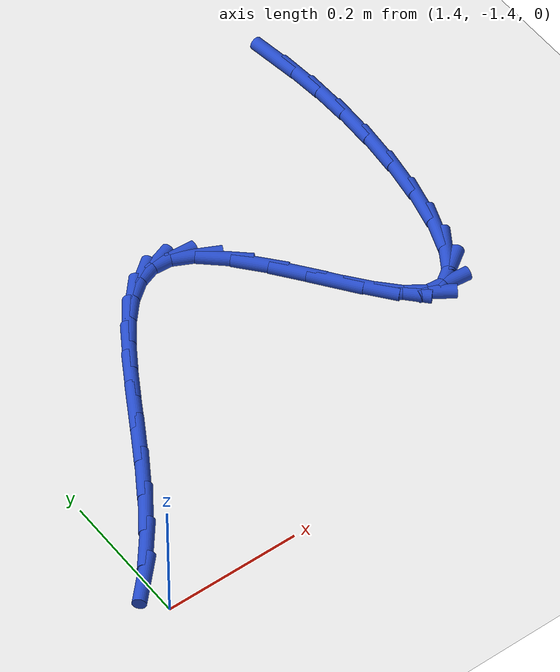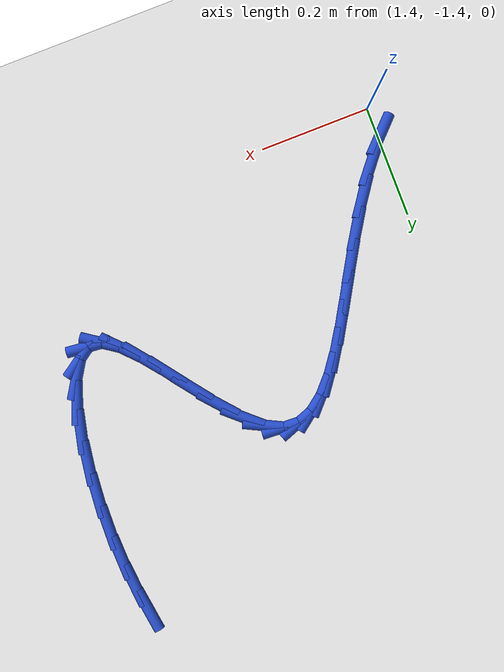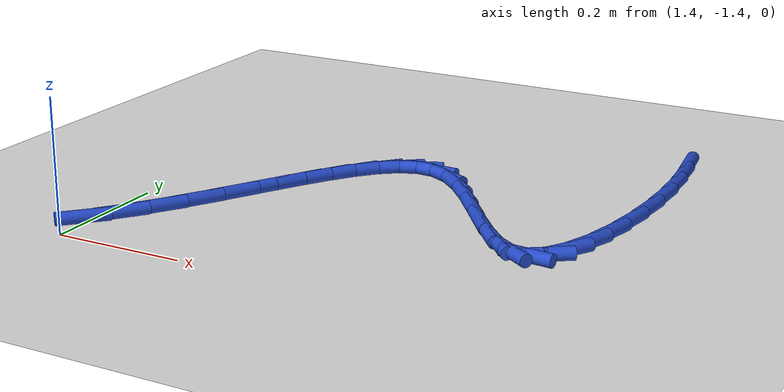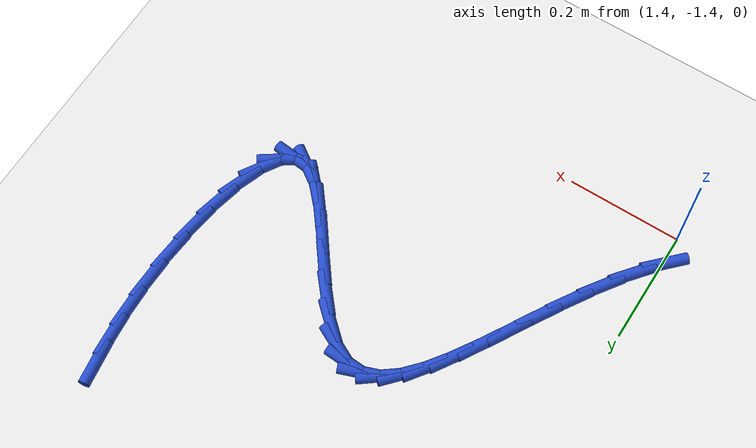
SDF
<sdf version="1.6">
 <world name="default">
  <model name="ground_plane">
   <static>1</static>
   <link name="link">
    <collision name="collision">
     <geometry><plane><normal>0 0 1</normal><size>100 100</size></plane></geometry>
     <surface><friction><ode><mu>100</mu><mu2>50</mu2></ode></friction></surface>
    </collision>
    <visual name="visual">
     <cast_shadows>0</cast_shadows>
     <geometry><plane><normal>0 0 1</normal><size>100 100</size></plane></geometry>
     <material>
      <script><uri>file://media/materials/scripts/gazebo.material</uri><name>Gazebo/WhiteGlow</name></script>
     </material>
    </visual>
   </link>
  </model>
  <model name="line">
   <link name="link_109">
    <pose>2.0806969809097278 -0.7121077961709674 0.01 0 1.57 -1.4297422819808794</pose>
    <collision name="collision">
     <geometry><cylinder><radius>0.01</radius><length>0.08</length></cylinder></geometry>
    </collision>
    <visual name="visual">
     <material>
      <script><name>Gazebo/Blue</name><uri>file://media/materials/scripts/gazebo.material</uri></script>
     </material>
     <geometry><cylinder><radius>0.01</radius><length>0.08</length></cylinder></geometry>
    </visual>
   </link>
   <link name="link_110">
    <pose>2.087818049885602 -0.7622572173757955 0.01 0 1.57 -1.483058819870906</pose>
    <collision name="collision">
     <geometry><cylinder><radius>0.01</radius><length>0.08</length></cylinder></geometry>
    </collision>
    <visual name="visual">
     <material>
      <script><name>Gazebo/Blue</name><uri>file://media/materials/scripts/gazebo.material</uri></script>
     </material>
     <geometry><cylinder><radius>0.01</radius><length>0.08</length></cylinder></geometry>
    </visual>
   </link>
   <link name="link_111">
    <pose>2.092530620627027 -0.8158314804649389 0.01 0 1.57 -1.5424538882655872</pose>
    <collision name="collision">
     <geometry><cylinder><radius>0.01</radius><length>0.08</length></cylinder></geometry>
    </collision>
    <visual name="visual">
     <material>
      <script><name>Gazebo/Blue</name><uri>file://media/materials/scripts/gazebo.material</uri></script>
     </material>
     <geometry><cylinder><radius>0.01</radius><length>0.08</length></cylinder></geometry>
    </visual>
   </link>
   <link name="link_112">
    <pose>2.094155187163833 -0.8731353539622159 0.01 0 1.57 1.5412333626647658</pose>
    <collision name="collision">
     <geometry><cylinder><radius>0.01</radius><length>0.08</length></cylinder></geometry>
    </collision>
    <visual name="visual">
     <material>
      <script><name>Gazebo/Blue</name><uri>file://media/materials/scripts/gazebo.material</uri></script>
     </material>
     <geometry><cylinder><radius>0.01</radius><length>0.08</length></cylinder></geometry>
    </visual>
   </link>
   <link name="link_113">
    <pose>2.0923902992349546 -0.9328172498233998 0.01 0 1.57 1.484482176233124</pose>
    <collision name="collision">
     <geometry><cylinder><radius>0.01</radius><length>0.08</length></cylinder></geometry>
    </collision>
    <visual name="visual">
     <material>
      <script><name>Gazebo/Blue</name><uri>file://media/materials/scripts/gazebo.material</uri></script>
     </material>
     <geometry><cylinder><radius>0.01</radius><length>0.08</length></cylinder></geometry>
    </visual>
   </link>
   <link name="link_114">
    <pose>2.0872610564807013 -0.9920948832553136 0.01 0 1.57 1.4210138317875791</pose>
    <collision name="collision">
     <geometry><cylinder><radius>0.01</radius><length>0.08</length></cylinder></geometry>
    </collision>
    <visual name="visual">
     <material>
      <script><name>Gazebo/Blue</name><uri>file://media/materials/scripts/gazebo.material</uri></script>
     </material>
     <geometry><cylinder><radius>0.01</radius><length>0.08</length></cylinder></geometry>
    </visual>
   </link>
   <link name="link_115">
    <pose>2.0788032952677566 -1.048138929182585 0.01 0 1.57 1.3398918988472788</pose>
    <collision name="collision">
     <geometry><cylinder><radius>0.01</radius><length>0.08</length></cylinder></geometry>
    </collision>
    <visual name="visual">
     <material>
      <script><name>Gazebo/Blue</name><uri>file://media/materials/scripts/gazebo.material</uri></script>
     </material>
     <geometry><cylinder><radius>0.01</radius><length>0.08</length></cylinder></geometry>
    </visual>
   </link>
   <link name="link_116">
    <pose>2.0670528519628015 -1.0981200625298417 0.01 0 1.57 1.2206101158611837</pose>
    <collision name="collision">
     <geometry><cylinder><radius>0.01</radius><length>0.08</length></cylinder></geometry>
    </collision>
    <visual name="visual">
     <material>
      <script><name>Gazebo/Blue</name><uri>file://media/materials/scripts/gazebo.material</uri></script>
     </material>
     <geometry><cylinder><radius>0.01</radius><length>0.08</length></cylinder></geometry>
    </visual>
   </link>
   <link name="link_117">
    <pose>2.0520455629325167 -1.1392089582217118 0.01 0 1.57 1.0152952510836672</pose>
    <collision name="collision">
     <geometry><cylinder><radius>0.01</radius><length>0.08</length></cylinder></geometry>
    </collision>
    <visual name="visual">
     <material>
      <script><name>Gazebo/Blue</name><uri>file://media/materials/scripts/gazebo.material</uri></script>
     </material>
     <geometry><cylinder><radius>0.01</radius><length>0.08</length></cylinder></geometry>
    </visual>
   </link>
   <link name="link_118">
    <pose>2.033817264543584 -1.1685762911828212 0.01 0 1.57 0.605283674114749</pose>
    <collision name="collision">
     <geometry><cylinder><radius>0.01</radius><length>0.08</length></cylinder></geometry>
    </collision>
    <visual name="visual">
     <material>
      <script><name>Gazebo/Blue</name><uri>file://media/materials/scripts/gazebo.material</uri></script>
     </material>
     <geometry><cylinder><radius>0.01</radius><length>0.08</length></cylinder></geometry>
    </visual>
   </link>
   <link name="link_119">
    <pose>2.0124037931626835 -1.1833927363377996 0.01 0 1.57 -0.09788023410320781</pose>
    <collision name="collision">
     <geometry><cylinder><radius>0.01</radius><length>0.08</length></cylinder></geometry>
    </collision>
    <visual name="visual">
     <material>
      <script><name>Gazebo/Blue</name><uri>file://media/materials/scripts/gazebo.material</uri></script>
     </material>
     <geometry><cylinder><radius>0.01</radius><length>0.08</length></cylinder></geometry>
    </visual>
   </link>
   <link name="link_120">
    <pose>1.9878535218407576 -1.1809820465417344 0.01 0 1.57 -0.6038722315549347</pose>
    <collision name="collision">
     <geometry><cylinder><radius>0.01</radius><length>0.08</length></cylinder></geometry>
    </collision>
    <visual name="visual">
     <material>
      <script><name>Gazebo/Blue</name><uri>file://media/materials/scripts/gazebo.material</uri></script>
     </material>
     <geometry><cylinder><radius>0.01</radius><length>0.08</length></cylinder></geometry>
    </visual>
   </link>
   <link name="link_121">
    <pose>1.9604967445570114 -1.1621103419742094 0.01 0 1.57 -0.8119499895668877</pose>
    <collision name="collision">
     <geometry><cylinder><radius>0.01</radius><length>0.08</length></cylinder></geometry>
    </collision>
    <visual name="visual">
     <material>
      <script><name>Gazebo/Blue</name><uri>file://media/materials/scripts/gazebo.material</uri></script>
     </material>
     <geometry><cylinder><radius>0.01</radius><length>0.08</length></cylinder></geometry>
    </visual>
   </link>
   <link name="link_122">
    <pose>1.9309421534945799 -1.1309430962657774 0.01 0 1.57 -0.899027513863273</pose>
    <collision name="collision">
     <geometry><cylinder><radius>0.01</radius><length>0.08</length></cylinder></geometry>
    </collision>
    <visual name="visual">
     <material>
      <script><name>Gazebo/Blue</name><uri>file://media/materials/scripts/gazebo.material</uri></script>
     </material>
     <geometry><cylinder><radius>0.01</radius><length>0.08</length></cylinder></geometry>
    </visual>
   </link>
   <link name="link_123">
    <pose>1.8998102729410689 -1.0917902577763523 0.01 0 1.57 -0.9277842895213513</pose>
    <collision name="collision">
     <geometry><cylinder><radius>0.01</radius><length>0.08</length></cylinder></geometry>
    </collision>
    <visual name="visual">
     <material>
      <script><name>Gazebo/Blue</name><uri>file://media/materials/scripts/gazebo.material</uri></script>
     </material>
     <geometry><cylinder><radius>0.01</radius><length>0.08</length></cylinder></geometry>
    </visual>
   </link>
   <link name="link_124">
    <pose>1.867721627184084 -1.0489617748658475 0.01 0 1.57 -0.9155799349532915</pose>
    <collision name="collision">
     <geometry><cylinder><radius>0.01</radius><length>0.08</length></cylinder></geometry>
    </collision>
    <visual name="visual">
     <material>
      <script><name>Gazebo/Blue</name><uri>file://media/materials/scripts/gazebo.material</uri></script>
     </material>
     <geometry><cylinder><radius>0.01</radius><length>0.08</length></cylinder></geometry>
    </visual>
   </link>
   <link name="link_125">
    <pose>1.8352967405112317 -1.006767595894178 0.01 0 1.57 -0.8588969498799159</pose>
    <collision name="collision">
     <geometry><cylinder><radius>0.01</radius><length>0.08</length></cylinder></geometry>
    </collision>
    <visual name="visual">
     <material>
      <script><name>Gazebo/Blue</name><uri>file://media/materials/scripts/gazebo.material</uri></script>
     </material>
     <geometry><cylinder><radius>0.01</radius><length>0.08</length></cylinder></geometry>
    </visual>
   </link>
   <link name="link_126">
    <pose>1.803156137210116 -0.9695176692212553 0.01 0 1.57 -0.7307508474088896</pose>
    <collision name="collision">
     <geometry><cylinder><radius>0.01</radius><length>0.08</length></cylinder></geometry>
    </collision>
    <visual name="visual">
     <material>
      <script><name>Gazebo/Blue</name><uri>file://media/materials/scripts/gazebo.material</uri></script>
     </material>
     <geometry><cylinder><radius>0.01</radius><length>0.08</length></cylinder></geometry>
    </visual>
   </link>
   <link name="link_127">
    <pose>1.7719203415683435 -0.941521943206994 0.01 0 1.57 -0.46395559321523194</pose>
    <collision name="collision">
     <geometry><cylinder><radius>0.01</radius><length>0.08</length></cylinder></geometry>
    </collision>
    <visual name="visual">
     <material>
      <script><name>Gazebo/Blue</name><uri>file://media/materials/scripts/gazebo.material</uri></script>
     </material>
     <geometry><cylinder><radius>0.01</radius><length>0.08</length></cylinder></geometry>
    </visual>
   </link>
   <link name="link_128">
    <pose>1.742132246104025 -0.9266164258792688 0.01 0 1.57 -0.05746020900238058</pose>
    <collision name="collision">
     <geometry><cylinder><radius>0.01</radius><length>0.08</length></cylinder></geometry>
    </collision>
    <visual name="visual">
     <material>
      <script><name>Gazebo/Blue</name><uri>file://media/materials/scripts/gazebo.material</uri></script>
     </material>
     <geometry><cylinder><radius>0.01</radius><length>0.08</length></cylinder></geometry>
    </visual>
   </link>
   <link name="link_129">
    <pose>1.713736192450087 -0.924982984607912 0.01 0 1.57 0.354588064767584</pose>
    <collision name="collision">
     <geometry><cylinder><radius>0.01</radius><length>0.08</length></cylinder></geometry>
    </collision>
    <visual name="visual">
     <material>
      <script><name>Gazebo/Blue</name><uri>file://media/materials/scripts/gazebo.material</uri></script>
     </material>
     <geometry><cylinder><radius>0.01</radius><length>0.08</length></cylinder></geometry>
    </visual>
   </link>
   <link name="link_130">
    <pose>1.6863982272261642 -0.935104501516611 0.01 0 1.57 0.6527757152002998</pose>
    <collision name="collision">
     <geometry><cylinder><radius>0.01</radius><length>0.08</length></cylinder></geometry>
    </collision>
    <visual name="visual">
     <material>
      <script><name>Gazebo/Blue</name><uri>file://media/materials/scripts/gazebo.material</uri></script>
     </material>
     <geometry><cylinder><radius>0.01</radius><length>0.08</length></cylinder></geometry>
    </visual>
   </link>
   <link name="link_131">
    <pose>1.659782854659089 -0.9554544424531973 0.01 0 1.57 0.8364310521054801</pose>
    <collision name="collision">
     <geometry><cylinder><radius>0.01</radius><length>0.08</length></cylinder></geometry>
    </collision>
    <visual name="visual">
     <material>
      <script><name>Gazebo/Blue</name><uri>file://media/materials/scripts/gazebo.material</uri></script>
     </material>
     <geometry><cylinder><radius>0.01</radius><length>0.08</length></cylinder></geometry>
    </visual>
   </link>
   <link name="link_132">
    <pose>1.6335545789756958 -0.9845062732655018 0.01 0 1.57 0.9450828297729834</pose>
    <collision name="collision">
     <geometry><cylinder><radius>0.01</radius><length>0.08</length></cylinder></geometry>
    </collision>
    <visual name="visual">
     <material>
      <script><name>Gazebo/Blue</name><uri>file://media/materials/scripts/gazebo.material</uri></script>
     </material>
     <geometry><cylinder><radius>0.01</radius><length>0.08</length></cylinder></geometry>
    </visual>
   </link>
   <link name="link_133">
    <pose>1.6073779044028158 -1.020733459801357 0.01 0 1.57 1.0072656165004936</pose>
    <collision name="collision">
     <geometry><cylinder><radius>0.01</radius><length>0.08</length></cylinder></geometry>
    </collision>
    <visual name="visual">
     <material>
      <script><name>Gazebo/Blue</name><uri>file://media/materials/scripts/gazebo.material</uri></script>
     </material>
     <geometry><cylinder><radius>0.01</radius><length>0.08</length></cylinder></geometry>
    </visual>
   </link>
   <link name="link_134">
    <pose>1.5809173351672836 -1.062609467908594 0.01 0 1.57 1.0387147655814848</pose>
    <collision name="collision">
     <geometry><cylinder><radius>0.01</radius><length>0.08</length></cylinder></geometry>
    </collision>
    <visual name="visual">
     <material>
      <script><name>Gazebo/Blue</name><uri>file://media/materials/scripts/gazebo.material</uri></script>
     </material>
     <geometry><cylinder><radius>0.01</radius><length>0.08</length></cylinder></geometry>
    </visual>
   </link>
   <link name="link_135">
    <pose>1.5538373754959303 -1.108607763435044 0.01 0 1.57 1.0475208188575598</pose>
    <collision name="collision">
     <geometry><cylinder><radius>0.01</radius><length>0.08</length></cylinder></geometry>
    </collision>
    <visual name="visual">
     <material>
      <script><name>Gazebo/Blue</name><uri>file://media/materials/scripts/gazebo.material</uri></script>
     </material>
     <geometry><cylinder><radius>0.01</radius><length>0.08</length></cylinder></geometry>
    </visual>
   </link>
   <link name="link_136">
    <pose>1.525802529615591 -1.1572018122285384 0.01 0 1.57 1.0374053176228841</pose>
    <collision name="collision">
     <geometry><cylinder><radius>0.01</radius><length>0.08</length></cylinder></geometry>
    </collision>
    <visual name="visual">
     <material>
      <script><name>Gazebo/Blue</name><uri>file://media/materials/scripts/gazebo.material</uri></script>
     </material>
     <geometry><cylinder><radius>0.01</radius><length>0.08</length></cylinder></geometry>
    </visual>
   </link>
   <link name="link_137">
    <pose>1.4964773017530972 -1.2068650801369083 0.01 0 1.57 1.0093176038111087</pose>
    <collision name="collision">
     <geometry><cylinder><radius>0.01</radius><length>0.08</length></cylinder></geometry>
    </collision>
    <visual name="visual">
     <material>
      <script><name>Gazebo/Blue</name><uri>file://media/materials/scripts/gazebo.material</uri></script>
     </material>
     <geometry><cylinder><radius>0.01</radius><length>0.08</length></cylinder></geometry>
    </visual>
   </link>
   <link name="link_138">
    <pose>1.4655261961352828 -1.2560710330079858 0.01 0 1.57 0.9621055392590939</pose>
    <collision name="collision">
     <geometry><cylinder><radius>0.01</radius><length>0.08</length></cylinder></geometry>
    </collision>
    <visual name="visual">
     <material>
      <script><name>Gazebo/Blue</name><uri>file://media/materials/scripts/gazebo.material</uri></script>
     </material>
     <geometry><cylinder><radius>0.01</radius><length>0.08</length></cylinder></geometry>
    </visual>
   </link>
   <link name="link_139">
    <pose>1.4326137169889805 -1.303293136689601 0.01 0 1.57 0.892716848702619</pose>
    <collision name="collision">
     <geometry><cylinder><radius>0.01</radius><length>0.08</length></cylinder></geometry>
    </collision>
    <visual name="visual">
     <material>
      <script><name>Gazebo/Blue</name><uri>file://media/materials/scripts/gazebo.material</uri></script>
     </material>
     <geometry><cylinder><radius>0.01</radius><length>0.08</length></cylinder></geometry>
    </visual>
   </link>
   <link name="link_140">
    <pose>1.3974043685410233 -1.3470048570295874 0.01 0 1.57 0.7962854390674735</pose>
    <collision name="collision">
     <geometry><cylinder><radius>0.01</radius><length>0.08</length></cylinder></geometry>
    </collision>
    <visual name="visual">
     <material>
      <script><name>Gazebo/Blue</name><uri>file://media/materials/scripts/gazebo.material</uri></script>
     </material>
     <geometry><cylinder><radius>0.01</radius><length>0.08</length></cylinder></geometry>
    </visual>
   </link>
  </model>
 </world>
</sdf>
